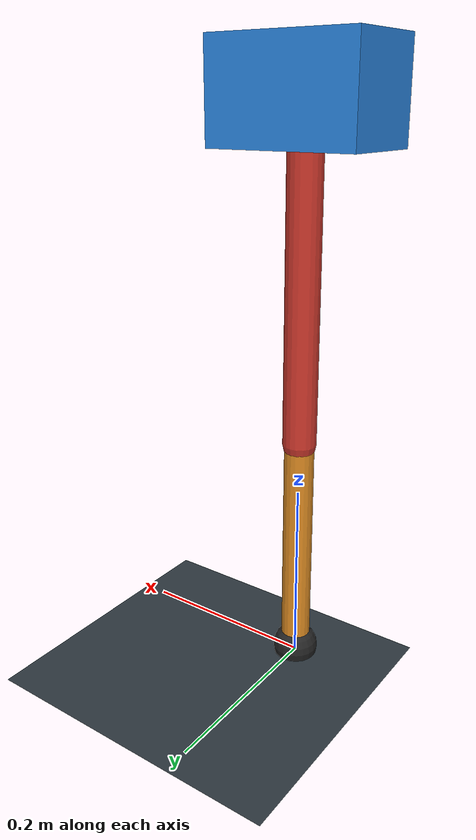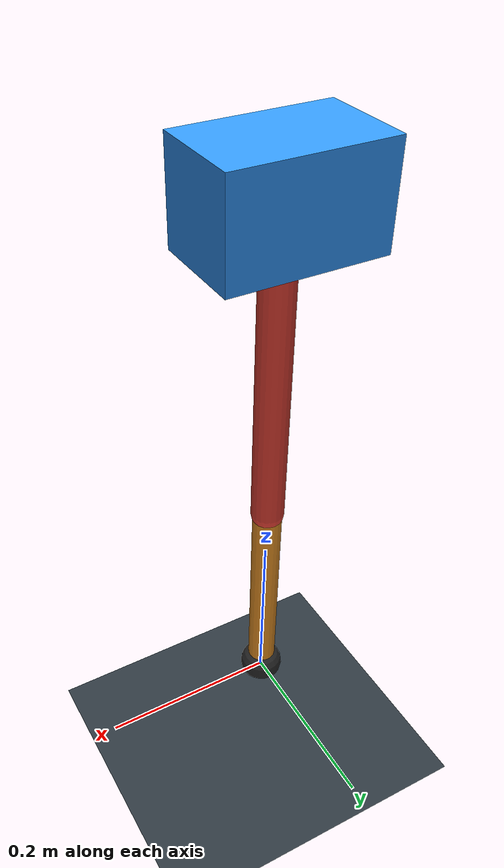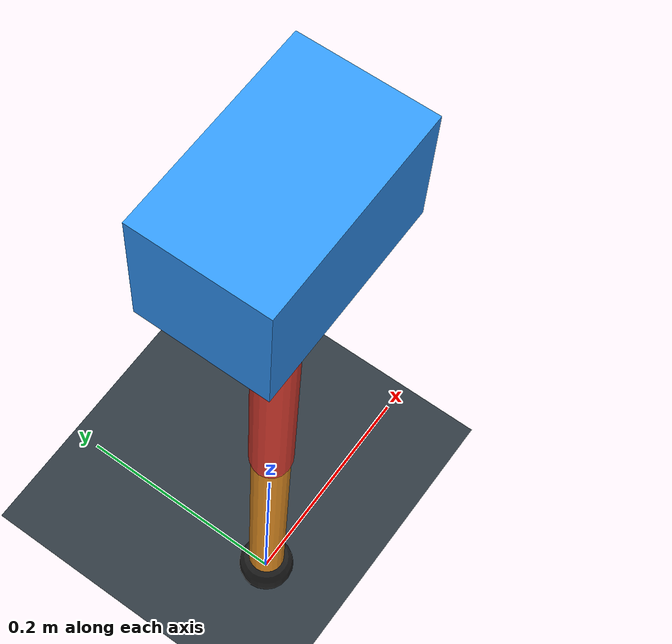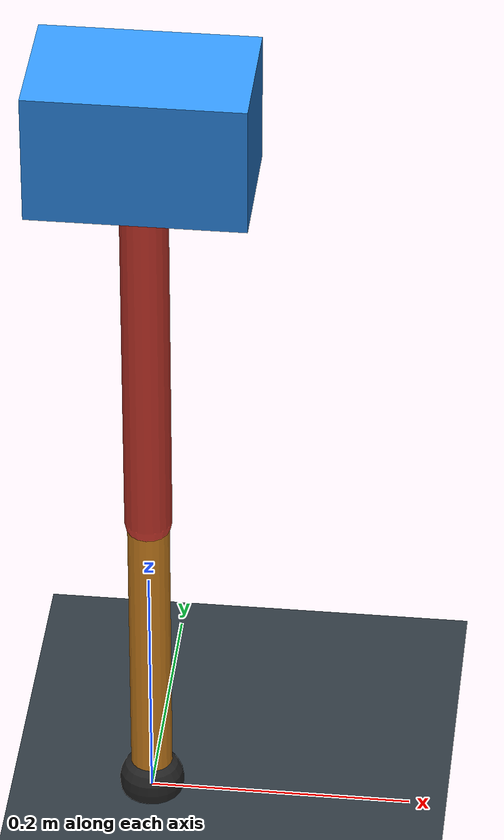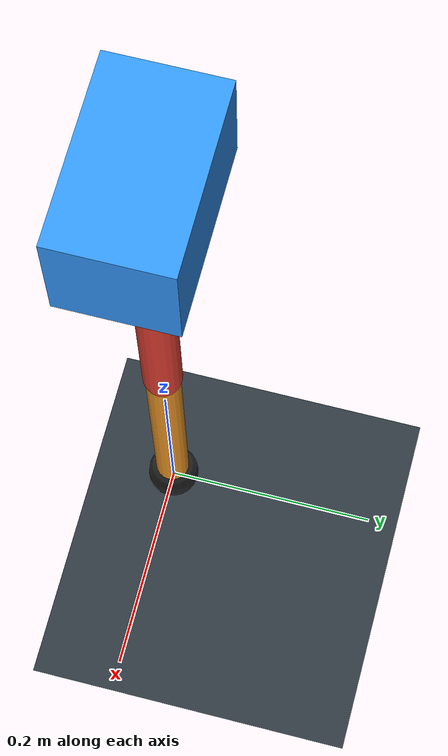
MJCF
<mujoco model="single_axis_two_bar">
  <compiler angle="radian" inertiafromgeom="true"/>
  <option timestep="0.001" integrator="implicitfast" gravity="0 0 -9.81"/>
  <default>
    <joint damping="0.08"/>
    <geom friction="1.2 0.01 0.0001" condim="3"/>
  </default>
  <worldbody>
    <geom name="floor" type="plane" size="5 5 0.1" rgba="0.18 0.22 0.25 1"/>
    <body name="carriage" pos="0 0 0.6061883791719046">
      <joint name="pole_slide" type="slide" axis="0 0 1"/>
      <geom name="payload" type="box" size="0.08 0.05 0.05" mass="3.1748436069724146" rgba="0.2 0.6 1 1"/>
      <body name="thigh" pos="0 0 0">
        <joint name="hip" type="hinge" axis="0 1 0"/>
        <geom name="thigh_link" type="capsule" fromto="0 0 0 0 0 -0.34896870229641563" size="0.018" mass="0.24864481160075708" rgba="0.9 0.25 0.2 1"/>
        <body name="shank" pos="0 0 -0.34896870229641563">
          <joint name="knee" type="hinge" axis="0 1 0"/>
          <geom name="shank_link" type="capsule" fromto="0 0 0 0 0 -0.25019457520039323" size="0.016" mass="0.17826694085990588" rgba="0.95 0.6 0.15 1"/>
          <geom name="foot" type="sphere" pos="0 0 -0.25019457520039323" size="0.025" mass="0.03" rgba="0.15 0.15 0.15 1"/>
          <site name="toe" pos="0 0 -0.25019457520039323" size="0.008"/>
        </body>
      </body>
    </body>
  </worldbody>
  <actuator>
    <motor name="hip_motor" joint="hip" ctrlrange="-33.26464858058573 33.26464858058573"/>
    <motor name="knee_motor" joint="knee" ctrlrange="-160.44181197085763 160.44181197085763"/>
  </actuator>
</mujoco>
